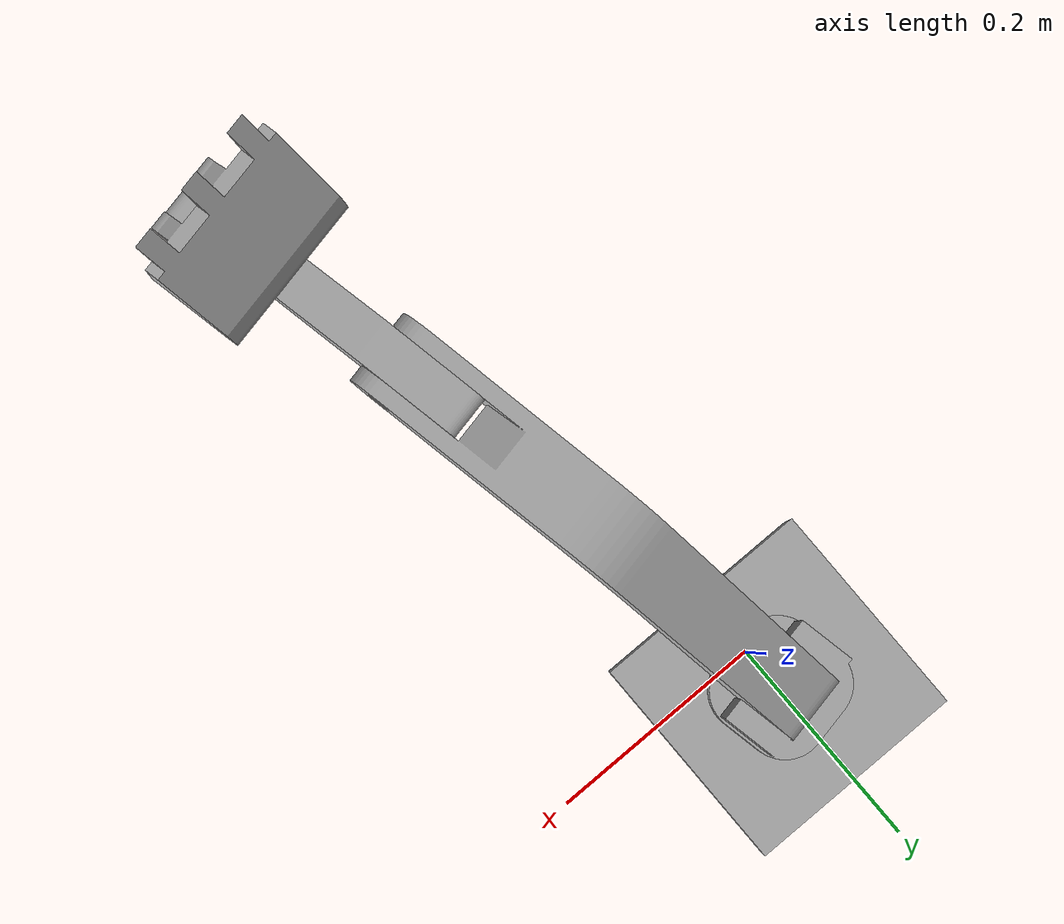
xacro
<?xml version="1.0" ?>
<robot name="Excavator_Final" xmlns:xacro="http://www.ros.org/wiki/xacro">

<xacro:include filename="$(find Excavator_Final_description)/urdf/materials.xacro" />
<xacro:include filename="$(find Excavator_Final_description)/urdf/Excavator_Final.trans" />
<xacro:include filename="$(find Excavator_Final_description)/urdf/Excavator_Final.gazebo" />
<link name="base_link">
  <inertial>
    <origin xyz="1.29758643600452e-17 0.037499999999999804 -0.0017508382705885572" rpy="0 0 0"/>
    <mass value="7.569856239706723"/>
    <inertia ixx="0.030083" iyy="0.030083" izz="0.053337" ixy="0.0" iyz="-0.0" ixz="0.0"/>
  </inertial>
  <visual>
    <origin xyz="0 0 0" rpy="0 0 0"/>
    <geometry>
      <mesh filename="file://$(find Excavator_Final_description)/meshes/base_link.stl" scale="0.001 0.001 0.001"/>
    </geometry>
    <material name="silver"/>
  </visual>
  <collision>
    <origin xyz="0 0 0" rpy="0 0 0"/>
    <geometry>
      <mesh filename="file://$(find Excavator_Final_description)/meshes/base_link.stl" scale="0.001 0.001 0.001"/>
    </geometry>
  </collision>
</link>

<link name="base_joint_1_1">
  <inertial>
    <origin xyz="1.2212453270876722e-17 -2.8449465006019636e-16 0.04183874882331236" rpy="0 0 0"/>
    <mass value="1.6338732668809755"/>
    <inertia ixx="0.002419" iyy="0.002916" izz="0.002414" ixy="-7.8e-05" iyz="0.0" ixz="-0.0"/>
  </inertial>
  <visual>
    <origin xyz="-0.0 -0.0375 -0.0125" rpy="0 0 0"/>
    <geometry>
      <mesh filename="file://$(find Excavator_Final_description)/meshes/base_joint_1_1.stl" scale="0.001 0.001 0.001"/>
    </geometry>
    <material name="silver"/>
  </visual>
  <collision>
    <origin xyz="-0.0 -0.0375 -0.0125" rpy="0 0 0"/>
    <geometry>
      <mesh filename="file://$(find Excavator_Final_description)/meshes/base_joint_1_1.stl" scale="0.001 0.001 0.001"/>
    </geometry>
  </collision>
</link>

<link name="arm_1_1">
  <inertial>
    <origin xyz="0.055942570864331395 -0.16748382923114594 0.11182731392787187" rpy="0 0 0"/>
    <mass value="3.925170481139749"/>
    <inertia ixx="0.068745" iyy="0.01806" izz="0.055643" ixy="0.007931" iyz="0.02562" ixz="-0.003915"/>
  </inertial>
  <visual>
    <origin xyz="0.029656 -0.032968 -0.107186" rpy="0 0 0"/>
    <geometry>
      <mesh filename="file://$(find Excavator_Final_description)/meshes/arm_1_1.stl" scale="0.001 0.001 0.001"/>
    </geometry>
    <material name="silver"/>
  </visual>
  <collision>
    <origin xyz="0.029656 -0.032968 -0.107186" rpy="0 0 0"/>
    <geometry>
      <mesh filename="file://$(find Excavator_Final_description)/meshes/arm_1_1.stl" scale="0.001 0.001 0.001"/>
    </geometry>
  </collision>
</link>

<link name="Pole_1">
  <inertial>
    <origin xyz="0.032426 -0.099650 -0.053902" rpy="0 0 0"/>
    <mass value="2.0830208694389847"/>
    <inertia ixx="0.008911" iyy="0.001597" izz="0.008065" ixy="0.001144" iyz="0.002721" ixz="-0.000416"/>
  </inertial>
  <visual>
    <origin xyz="-0.038947 0.329902 -0.358200" rpy="0 0 0"/>
    <geometry>
      <mesh filename="file://$(find Excavator_Final_description)/meshes/Pole_1.stl" scale="0.001 0.001 0.001"/>
    </geometry>
    <material name="silver"/>
  </visual>
  <collision>
    <origin xyz="-0.038947 0.329902 -0.358200" rpy="0 0 0"/>
    <geometry>
      <mesh filename="file://$(find Excavator_Final_description)/meshes/Pole_1.stl" scale="0.001 0.001 0.001"/>
    </geometry>
  </collision>
</link>

<link name="Bucket_1">
  <inertial>
    <origin xyz="0.001632 -0.123214 0.037475" rpy="0 0 0"/>
    <mass value="2.1376034633898464"/>
    <inertia ixx="0.005846" iyy="0.004627" izz="0.007945" ixy="0.000191" iyz="-7.8e-05" ixz="1.2e-05"/>
  </inertial>
  <visual>
    <origin xyz="-0.101349 0.513179 -0.352900" rpy="0 0 0"/>
    <geometry>
      <mesh filename="file://$(find Excavator_Final_description)/meshes/Bucket_1.stl" scale="0.001 0.001 0.001"/>
    </geometry>
    <material name="silver"/>
  </visual>
  <collision>
    <origin xyz="-0.101349 0.513179 -0.352900" rpy="0 0 0"/>
    <geometry>
      <mesh filename="file://$(find Excavator_Final_description)/meshes/Bucket_1.stl" scale="0.001 0.001 0.001"/>
    </geometry>
  </collision>
</link>

<joint name="Revolute 4" type="continuous">
  <origin xyz="0.0 0.0375 0.0125" rpy="0 0 0"/>
  <parent link="base_link"/>
  <child link="base_joint_1_1"/>
  <axis xyz="0.0 0.0 1.0"/>
</joint>

<joint name="Revolute 5" type="continuous">
  <origin xyz="-0.029656 -0.004532 0.094686" rpy="0 0 0"/>
  <parent link="base_joint_1_1"/>
  <child link="arm_1_1"/>
  <axis xyz="-0.988524 -0.151061 0.0"/>
</joint>

<joint name="Revolute 6" type="continuous">
  <origin xyz="0.068603 -0.362870 0.251014" rpy="0 0 0"/>
  <parent link="arm_1_1"/>
  <child link="Pole_1"/>
  <axis xyz="0.988524 0.151061 -0.0"/>
</joint>

<joint name="Revolute 7" type="continuous">
  <origin xyz="0.062402 -0.183277 -0.005300" rpy="0 0 0"/>
  <parent link="Pole_1"/>
  <child link="Bucket_1"/>
  <axis xyz="0.988524 0.151061 -0.0"/>
</joint>

</robot>

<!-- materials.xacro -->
<robot name="Excavator_Final" xmlns:xacro="http://www.ros.org/wiki/xacro" >

<material name="silver">
  <color rgba="0.700 0.700 0.700 1.000"/>
</material>

</robot>

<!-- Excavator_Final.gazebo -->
<robot name="Excavator_Final" xmlns:xacro="http://www.ros.org/wiki/xacro" >

<xacro:property name="body_color" value="Gazebo/Silver" />

<gazebo>
  <plugin name="control" filename="libgazebo_ros_control.so"/>
</gazebo>
<gazebo reference="base_link">
  <material>${body_color}</material>
  <mu1>0.2</mu1>
  <mu2>0.2</mu2>
  <self_collide>true</self_collide>
  <gravity>true</gravity>
</gazebo>

<gazebo reference="base_joint_1_1">
  <material>${body_color}</material>
  <mu1>0.2</mu1>
  <mu2>0.2</mu2>
  <self_collide>true</self_collide>
</gazebo>

<gazebo reference="arm_1_1">
  <material>${body_color}</material>
  <mu1>0.2</mu1>
  <mu2>0.2</mu2>
  <self_collide>true</self_collide>
</gazebo>

<gazebo reference="Pole_1">
  <material>${body_color}</material>
  <mu1>0.2</mu1>
  <mu2>0.2</mu2>
  <self_collide>true</self_collide>
</gazebo>

<gazebo reference="Bucket_1">
  <material>${body_color}</material>
  <mu1>0.2</mu1>
  <mu2>0.2</mu2>
  <self_collide>true</self_collide>
</gazebo>

</robot>
